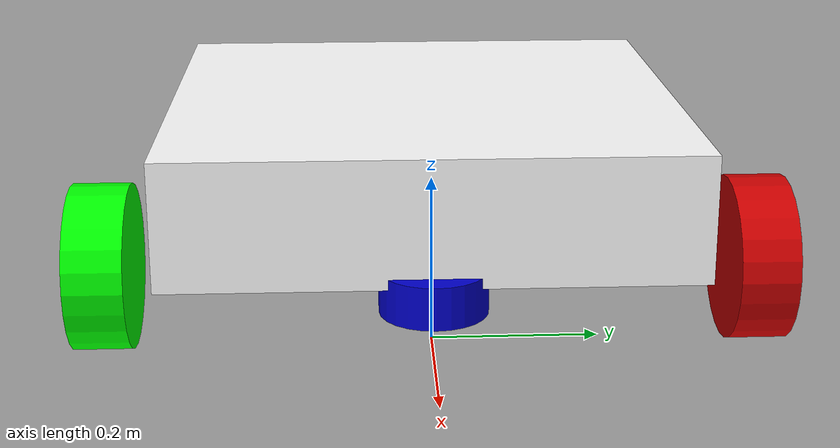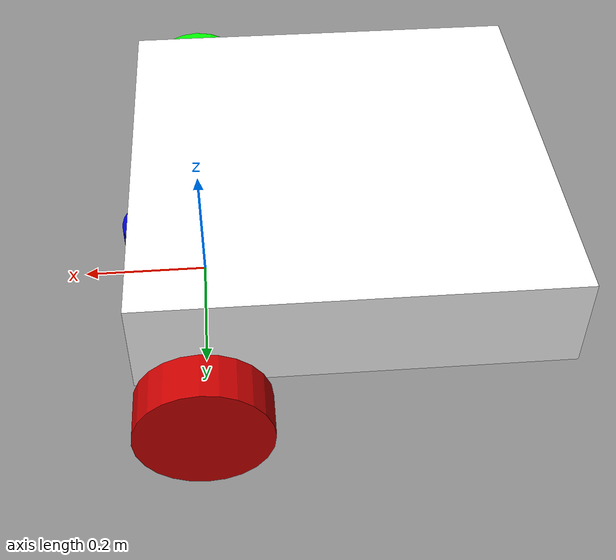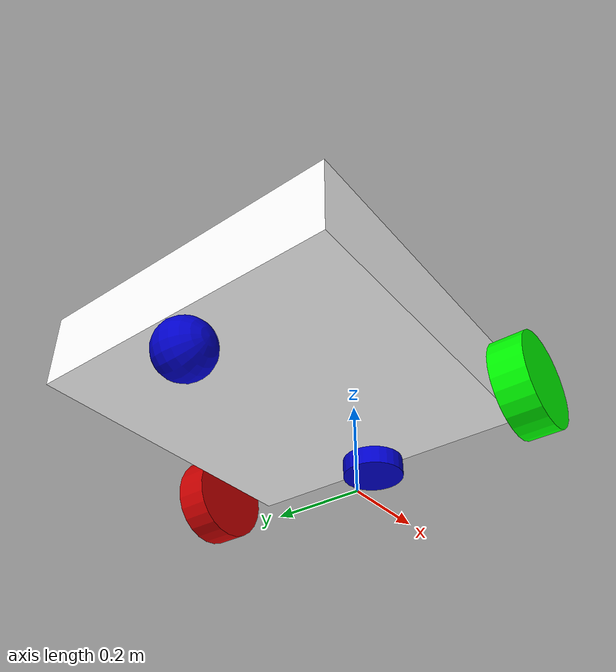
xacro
<?xml version="1.0"?>
<robot xmlns:xacro="http://www.ros.org/wiki/xacro"
 	xmlns:sensor="http://playerstage.sourceforge.net/gazebo/xmlschema/#sensor"
    	xmlns:controller="http://playerstage.sourceforge.net/gazebo/xmlschema/#controller"
    	xmlns:interface="http://playerstage.sourceforge.net/gazebo/xmlschema/#interface"
	name="bigbot">

	<!-- Defining the colors used in this robot -->
	<material name="Black">
	  <color rgba="0.0 0.0 0.0 1.0"/>
	</material>

	<material name="Red">
	  <color rgba="0.8 0.0 0.0 1.0"/>
	</material>

	<material name="White">
	  <color rgba="1.0 1.0 1.0 1.0"/>
	</material>

	<material name="Blue">
	  <color rgba="0.0 0.0 0.8 1.0"/>
	</material>

	<material name="Green">
	  <color rgba="0.0 1.0 0.0 1.0"/>
	</material>

	<!-- Defining parameters-->
	<xacro:property name="mass_base" value="12" />
	<xacro:property name="length_base" value="0.635" />
	<xacro:property name="width_base" value="0.635" />
	<xacro:property name="depth_base" value="0.1524" />
	<xacro:property name="wheel_base" value=" 0.76708" />

	<xacro:property name="length_wheel" value="0.0682625" />
	<xacro:property name="radius_wheel" value="0.09763" />
	<xacro:property name="extend_wheel" value="0.03175" /> <!-- to be added to collision for axile -->
 	<xacro:property name="M_PI_2" value="1.570796327" />
 	<xacro:property name="M_PI" value="3.1415926535897931" />
	<xacro:property name="radius_caster" value="0.05715" />

        <!-- Define a macro -->
	<xacro:macro name="default_inertial" params="mass">
               <inertial>
                       <mass value="${mass}" />
                       <inertia ixx="1.0" ixy="0.0" ixz="0.0"
                                iyy="1.0" iyz="0.0"
                                izz="1.0" />
               </inertial>
	</xacro:macro>

	<xacro:macro name="cylinder_inertial" params="m r h">
		<inertial>
			 <mass value="${m}" />
			<inertia  ixx="${m*(3*r*r+h*h)/12}" ixy = "0" ixz = "0"
	      		iyy="${m*(3*r*r+h*h)/12}" iyz = "0"
	      		izz="${m*r*r/2}" />
               </inertial>
	</xacro:macro>

	<!-- per https://en.wikipedia.org/wiki/List_of_moments_of_inertia
	  ixx = m/12(h * h  + d * d)
	  iyy = m/12(w * w  + d * d)
	  izz= m/12(w * w  + h * h)
	 -->

	<xacro:macro name="box_inertial" params="m w h d x">
		<inertial>
			 <mass value="${m}" />
			<inertia  ixx="${m*(h*h + d *d)/12}"
			ixy = "0" ixz = "0"
	      		iyy="${m*(w*w+d*d)/12}"
			iyz = "0"
	      		izz="${m*(h*h+w*w)/12}"
			/>

			<origin xyz="${x} 0 0"/>
               </inertial>
	</xacro:macro>

	<!-- base_link is a fictitious link(frame) that is on the ground right below chassis_link origin -->
	<link name="base_link">
   		<visual>
			<geometry>
      				<box size="0.001 0.001 0.001"/>
     		</geometry>
			<origin rpy="0 0 0" xyz="0 0 0"/>
			<material name="Red"/>
   		</visual>
		<xacro:default_inertial mass="0.0001"/>

 	</link>

	<gazebo reference="base_link">
		<material>Gazebo/Red</material>
		<turnGravityOff>false</turnGravityOff>
	</gazebo>

	<joint name="base_link_joint" type="fixed">
		<origin xyz="0 0 ${radius_wheel}" rpy="0 0 0" />
		<parent link="base_link" />
		<child link="chassis_link" />
	</joint>

	<link name="chassis_link">
   		<visual>
			<geometry>
      				<box size="${length_base} ${width_base} ${depth_base}"/>
     			</geometry>
			<origin rpy="0 0 0" xyz="-0.22 0 ${(depth_base/2)}"/>
			<material name="White"/>
   		</visual>
		<collision>
			<geometry>
       				<box size="${length_base + 0.0254} ${width_base + 0.0254} ${depth_base+ 0.0254}"/>
			</geometry>
			<origin rpy="0 0 0" xyz="-0.22 0 0"/>
		</collision>

		<xacro:box_inertial m="${mass_base}" w="${width_base}" h="${length_base}" d="${depth_base}"  x="-0.22" />
 	</link>

	<gazebo reference="chassis_link">
	    <material>Gazebo/White</material>
	    <turnGravityOff>false</turnGravityOff>
	</gazebo>

 	<link name="left_wheel">
   		<visual>
     			<geometry>
       				<cylinder length="${length_wheel}" radius="${radius_wheel}"/>
     			</geometry>

			<origin rpy="0 0 0" xyz="0 0 0"/>
   			<material name="Red"/>
		</visual>
		<collision>
			<geometry>
       				<cylinder length="${length_wheel+ extend_wheel}" radius="${radius_wheel}"/>
			</geometry>
		</collision>
		<xacro:cylinder_inertial m="1" r="${radius_wheel}" h="${length_wheel}"/>
 	</link>

	<gazebo reference="left_wheel">
		<turnGravityOff>false</turnGravityOff>
        <material>Gazebo/Red</material>
	</gazebo>

 	<link name="right_wheel">
   		<visual>
     			<geometry>
       				<cylinder length="${length_wheel}" radius="${radius_wheel}"/>
     			</geometry>
			<origin rpy="0 0 0" xyz="0 0 0"/>
   			<material name="Green"/>
   		</visual>
		<collision>
			<geometry>
       				<cylinder length="${length_wheel+ extend_wheel}" radius="${radius_wheel}"/>
			</geometry>
		</collision>
		<xacro:cylinder_inertial m="1" r="${radius_wheel}" h="${length_wheel}"/>

 	</link>

     <gazebo reference="right_wheel">
	    <turnGravityOff>false</turnGravityOff>
        <material>Gazebo/Green</material>
     </gazebo>

	 <joint name="base_to_left_wheel" type="continuous">
		<parent link="chassis_link"/>
		<child link="left_wheel"/>
		<origin rpy="1.5707 0 0" xyz="0 ${wheel_base/2} 0"/>
		<axis xyz="0 0 1" />
	 </joint>

	 <joint name="base_to_right_wheel" type="continuous">
		<parent link="chassis_link"/>
		<child link="right_wheel"/>
		<origin rpy="1.5707 0 0" xyz="0 ${-wheel_base/2} 0"/>
		<axis xyz="0 0 1" />
	 </joint>

	<!--Caster Back  -->

    <link name="caster_link">
    <visual>
      <origin xyz="0 0 0" rpy="${M_PI/2} 0 0" />
      <geometry>
	<sphere radius="${radius_caster}" />
      </geometry>
      <material name="Blue" />
    </visual>
      <collision>
        <geometry>
    	<sphere radius="${radius_caster}" />
        </geometry>
      <origin xyz="0 0. 0" rpy="${M_PI/2} 0 0" />
      </collision>
      <inertial>
        <mass value="1" />
        <origin xyz="0 0 0" />
        <inertia ixx="0.001" ixy="0.0" ixz="0.0"
                 iyy="0.001" iyz="0.0"
                 izz="0.001" />
      </inertial>
    </link>

   <joint name="caster_joint" type="fixed">
      <parent link="chassis_link"/>
      <child link="caster_link"/>
      <origin xyz="-0.4948 0.0 ${radius_caster -radius_wheel}" rpy="0 0 0"/>
   </joint>

<!-- R was ${-M_PI/2} -->

	<gazebo reference="caster_link">
		<turnGravityOff>false</turnGravityOff>
		<material>Gazebo/Blue</material>
	</gazebo>

  <!-- laser joint -->
  <joint name="laser_joint" type="fixed">
    <origin xyz="0.0635 0.0 -0.0127" rpy="0 0 0"/>
    <parent link="chassis_link"/>
    <axis xyz="0 1 0" />
    <child link="laser_point"/>
  </joint>

  <!-- laser joint -->
  <joint name="laser_rotate" type="fixed">
    <origin xyz="0 0 0" rpy="3.14 0 -1.57"/>
    <parent link="laser_point"/>
    <axis xyz="0 1 0" />
    <child link="laser_frame"/>
  </joint>

  <link name="laser_point">
    <collision>
      <origin xyz="0 0 0" rpy="0 0 0"/>
      <geometry>
        <cylinder length=".0001" radius="0.0001"/>
      </geometry>
    </collision>

    <visual>
      <origin xyz="0 0 0" rpy="0 0 0"/>
      <geometry>
        <cylinder length=".0001" radius="0.0001"/>
      </geometry>
      <material name="Blue" />
    </visual>

    <inertial>
      <mass value="1e-5" />
      <origin xyz="0 0 0" rpy="0 0 0"/>
      <inertia ixx="1e-6" ixy="0" ixz="0" iyy="1e-6" iyz="0" izz="1e-6" />
    </inertial>
  </link>

  <!-- sweep Laser -->
  <link name="laser_frame">
    <collision>
      <origin xyz="0 0 0" rpy="0 0 0"/>
      <geometry>
        <cylinder length=".0508" radius="0.0635"/>
      </geometry>
    </collision>

    <visual>
      <origin xyz="0 0 0" rpy="0 0 0"/>
      <geometry>
        <cylinder length=".0508" radius="0.0635"/>
      </geometry>
      <material name="Blue" />
    </visual>

    <inertial>
      <mass value="1e-5" />
      <origin xyz="0 0 0" rpy="0 0 0"/>
      <inertia ixx="1e-6" ixy="0" ixz="0" iyy="1e-6" iyz="0" izz="1e-6" />
    </inertial>
  </link>

  <!-- Differential drive controller  -->
  <gazebo>
    <plugin name="differential_drive_controller" filename="libgazebo_ros_diff_drive.so">

      <rosDebugLevel>Debug</rosDebugLevel>
      <publishWheelTF>false</publishWheelTF>
      <robotNamespace>/</robotNamespace>
      <publishTf>1</publishTf>
      <publishWheelJointState>false</publishWheelJointState>
      <alwaysOn>true</alwaysOn>
      <updateRate>100.0</updateRate>
      <leftJoint>base_to_left_wheel</leftJoint>
      <rightJoint>base_to_right_wheel</rightJoint>
      <wheelSeparation>${wheel_base}</wheelSeparation>
      <wheelDiameter>${2*radius_wheel}</wheelDiameter>
      <broadcastTF>1</broadcastTF>
      <wheelTorque>30</wheelTorque>
      <wheelAcceleration>1.8</wheelAcceleration>
      <commandTopic>cmd_vel</commandTopic>
      <odometryFrame>odom</odometryFrame>
      <odometryTopic>odom</odometryTopic>
      <robotBaseFrame>base_link</robotBaseFrame>

    </plugin>
</gazebo>

</robot>
